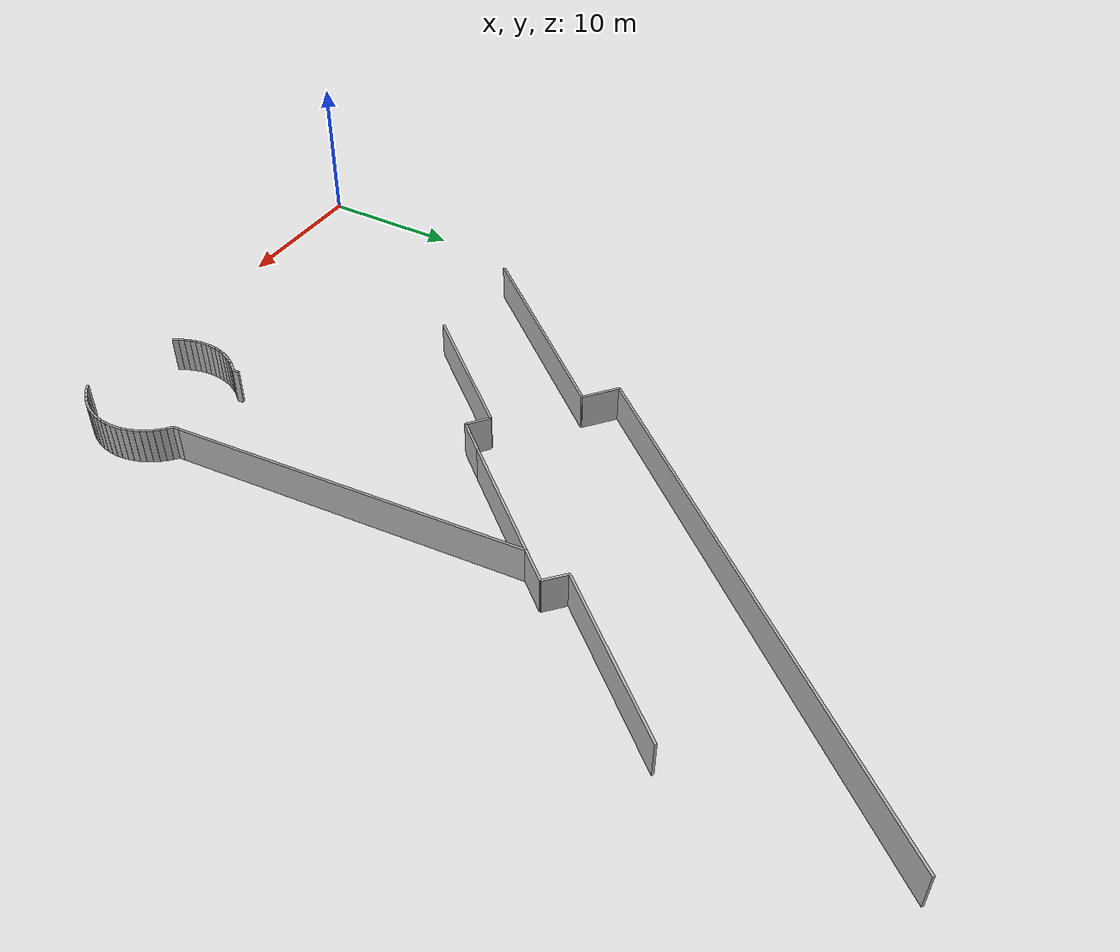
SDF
<?xml version="1.0" ?>
<sdf version="1.6">
  <model name="sps_0839">
    <pose frame="">0 0 0 0 -0 0</pose>
    <static>1</static>
    <self_collide>0</self_collide>
    <allow_auto_disable>0</allow_auto_disable>
    <link name="Wall34">
      <kinematic>0</kinematic>
      <gravity>1</gravity>
      <self_collide>0</self_collide>
      <collision name="collision">
        <geometry>
          <box>
            <size>15.2064 0.15 2.5</size>
          </box>
        </geometry>
        <pose frame="">0 0 0 0 -0 0</pose>
      </collision>
      <visual name="visual">
        <geometry>
          <box>
            <size>15.2064 0.15 2.5</size>
          </box>
        </geometry>
        <pose frame="">0 0 0 0 -0 0</pose>
        <cast_shadows>1</cast_shadows>
        <transparency>0.0</transparency>
      </visual>
      <pose frame="">8.95257 23.6938 1.25 0 0 -2.27376</pose>
    </link>
    <link name="Wall41">
      <kinematic>0</kinematic>
      <gravity>1</gravity>
      <self_collide>0</self_collide>
      <collision name="collision">
        <geometry>
          <box>
            <size>10.116 0.15 2.5</size>
          </box>
        </geometry>
        <pose frame="">0 0 0 0 -0 0</pose>
      </collision>
      <visual name="visual">
        <geometry>
          <box>
            <size>10.116 0.15 2.5</size>
          </box>
        </geometry>
        <pose frame="">0 0 0 0 -0 0</pose>
        <cast_shadows>1</cast_shadows>
        <transparency>0.0</transparency>
      </visual>
      <pose frame="">15.181 21.753 1.25 0 -0 0.868142</pose>
    </link>
    <link name="Wall42">
      <kinematic>0</kinematic>
      <gravity>1</gravity>
      <self_collide>0</self_collide>
      <collision name="collision">
        <geometry>
          <box>
            <size>1.60706 0.15 2.5</size>
          </box>
        </geometry>
        <pose frame="">0 0 0 0 -0 0</pose>
      </collision>
      <visual name="visual">
        <geometry>
          <box>
            <size>1.60706 0.15 2.5</size>
          </box>
        </geometry>
        <pose frame="">0 0 0 0 -0 0</pose>
        <cast_shadows>1</cast_shadows>
        <transparency>0.0</transparency>
      </visual>
      <pose frame="">19.0619 25.0924 1.25 0 0 -0.70461</pose>
    </link>
    <link name="Wall43">
      <kinematic>0</kinematic>
      <gravity>1</gravity>
      <self_collide>0</self_collide>
      <collision name="collision">
        <geometry>
          <box>
            <size>2.44092 0.15 2.5</size>
          </box>
        </geometry>
        <pose frame="">0 0 0 0 -0 0</pose>
      </collision>
      <visual name="visual">
        <geometry>
          <box>
            <size>2.44092 0.15 2.5</size>
          </box>
        </geometry>
        <pose frame="">0 0 0 0 -0 0</pose>
        <cast_shadows>1</cast_shadows>
        <transparency>0.0</transparency>
      </visual>
      <pose frame="">20.4654 25.501 1.25 0 -0 0.865243</pose>
    </link>
    <link name="Wall44">
      <kinematic>0</kinematic>
      <gravity>1</gravity>
      <self_collide>0</self_collide>
      <collision name="collision">
        <geometry>
          <box>
            <size>1.62048 0.15 2.5</size>
          </box>
        </geometry>
        <pose frame="">0 0 0 0 -0 0</pose>
      </collision>
      <visual name="visual">
        <geometry>
          <box>
            <size>1.62048 0.15 2.5</size>
          </box>
        </geometry>
        <pose frame="">0 0 0 0 -0 0</pose>
        <cast_shadows>1</cast_shadows>
        <transparency>0.0</transparency>
      </visual>
      <pose frame="">27.7577 35.3554 1.25 0 0 -0.759801</pose>
    </link>
    <link name="Wall206">
      <kinematic>0</kinematic>
      <gravity>1</gravity>
      <self_collide>0</self_collide>
      <collision name="collision">
        <geometry>
          <box>
            <size>2.50517 0.15 2.5</size>
          </box>
        </geometry>
        <pose frame="">0 0 0 0 -0 0</pose>
      </collision>
      <visual name="visual">
        <geometry>
          <box>
            <size>2.50517 0.15 2.5</size>
          </box>
        </geometry>
        <pose frame="">0 0 0 0 -0 0</pose>
        <cast_shadows>1</cast_shadows>
        <transparency>0.0</transparency>
      </visual>
      <pose frame="">12.9123 30.3043 1.25 0 -0 2.43862</pose>
    </link>
    <link name="Wall444">
      <kinematic>0</kinematic>
      <gravity>1</gravity>
      <self_collide>0</self_collide>
      <collision name="collision">
        <geometry>
          <box>
            <size>34.8178 0.15 2.5</size>
          </box>
        </geometry>
        <pose frame="">0 0 0 0 -0 0</pose>
      </collision>
      <visual name="visual">
        <geometry>
          <box>
            <size>34.8178 0.15 2.5</size>
          </box>
        </geometry>
        <pose frame="">0 0 0 0 -0 0</pose>
        <cast_shadows>1</cast_shadows>
        <transparency>0.0</transparency>
      </visual>
      <pose frame="">23.213 44.3943 1.25 0 -0 0.867691</pose>
    </link>
    <link name="Wall551">
      <kinematic>0</kinematic>
      <gravity>1</gravity>
      <self_collide>0</self_collide>
      <collision name="collision">
        <geometry>
          <box>
            <size>2.33975 0.15 2.5</size>
          </box>
        </geometry>
        <pose frame="">0 0 0 0 -0 0</pose>
      </collision>
      <visual name="visual">
        <geometry>
          <box>
            <size>2.33975 0.15 2.5</size>
          </box>
        </geometry>
        <pose frame="">0 0 0 0 -0 0</pose>
        <cast_shadows>1</cast_shadows>
        <transparency>0.0</transparency>
      </visual>
      <pose frame="">27.589 33.9046 1.25 0 0 -2.27354</pose>
    </link>
    <link name="Wall619">
      <kinematic>0</kinematic>
      <gravity>1</gravity>
      <self_collide>0</self_collide>
      <collision name="collision">
        <geometry>
          <box>
            <size>11.2896 0.15 2.5</size>
          </box>
        </geometry>
        <pose frame="">0 0 0 0 -0 0</pose>
      </collision>
      <visual name="visual">
        <geometry>
          <box>
            <size>11.2896 0.15 2.5</size>
          </box>
        </geometry>
        <pose frame="">0 0 0 0 -0 0</pose>
        <cast_shadows>1</cast_shadows>
        <transparency>0.0</transparency>
      </visual>
      <pose frame="">30.8198 40.2198 1.25 0 -0 0.867753</pose>
    </link>
    <link name="Wall863">
      <kinematic>0</kinematic>
      <gravity>1</gravity>
      <self_collide>0</self_collide>
      <collision name="collision">
        <geometry>
          <box>
            <size>8.62596 0.15 2.5</size>
          </box>
        </geometry>
        <pose frame="">0 0 0 0 -0 0</pose>
      </collision>
      <visual name="visual">
        <geometry>
          <box>
            <size>8.62596 0.15 2.5</size>
          </box>
        </geometry>
        <pose frame="">0 0 0 0 -0 0</pose>
        <cast_shadows>1</cast_shadows>
        <transparency>0.0</transparency>
      </visual>
      <pose frame="">24.0449 29.7201 1.25 0 -0 0.867941</pose>
    </link>
    <link name="Wall864">
      <kinematic>0</kinematic>
      <gravity>1</gravity>
      <self_collide>0</self_collide>
      <collision name="collision">
        <geometry>
          <box>
            <size>23.2917 0.15 2.5</size>
          </box>
        </geometry>
        <pose frame="">0 0 0 0 -0 0</pose>
      </collision>
      <visual name="visual">
        <geometry>
          <box>
            <size>23.2917 0.15 2.5</size>
          </box>
        </geometry>
        <pose frame="">0 0 0 0 -0 0</pose>
        <cast_shadows>1</cast_shadows>
        <transparency>0.0</transparency>
      </visual>
      <pose frame="">27.8028 21.4055 1.25 0 0 -1.48741</pose>
    </link>
    <link name="Wall865">
      <kinematic>0</kinematic>
      <gravity>1</gravity>
      <self_collide>0</self_collide>
      <collision name="collision">
        <geometry>
          <box>
            <size>0.421421 0.15 2.5</size>
          </box>
        </geometry>
        <pose frame="">0 0 0 0 -0 0</pose>
      </collision>
      <visual name="visual">
        <geometry>
          <box>
            <size>0.421421 0.15 2.5</size>
          </box>
        </geometry>
        <pose frame="">0 0 0 0 -0 0</pose>
        <cast_shadows>1</cast_shadows>
        <transparency>0.0</transparency>
      </visual>
      <pose frame="">28.7902 9.59007 1.25 0 0 -1.48815</pose>
    </link>
    <link name="Wall866">
      <kinematic>0</kinematic>
      <gravity>1</gravity>
      <self_collide>0</self_collide>
      <collision name="collision">
        <geometry>
          <box>
            <size>0.399021 0.15 2.5</size>
          </box>
        </geometry>
        <pose frame="">0 0 0 0 -0 0</pose>
      </collision>
      <visual name="visual">
        <geometry>
          <box>
            <size>0.399021 0.15 2.5</size>
          </box>
        </geometry>
        <pose frame="">0 0 0 0 -0 0</pose>
        <cast_shadows>1</cast_shadows>
        <transparency>0.0</transparency>
      </visual>
      <pose frame="">28.9608 9.25227 1.25 0 0 -0.695287</pose>
    </link>
    <link name="Wall867">
      <kinematic>0</kinematic>
      <gravity>1</gravity>
      <self_collide>0</self_collide>
      <collision name="collision">
        <geometry>
          <box>
            <size>0.398958 0.15 2.5</size>
          </box>
        </geometry>
        <pose frame="">0 0 0 0 -0 0</pose>
      </collision>
      <visual name="visual">
        <geometry>
          <box>
            <size>0.398958 0.15 2.5</size>
          </box>
        </geometry>
        <pose frame="">0 0 0 0 -0 0</pose>
        <cast_shadows>1</cast_shadows>
        <transparency>0.0</transparency>
      </visual>
      <pose frame="">29.2555 8.98387 1.25 0 0 -0.782153</pose>
    </link>
    <link name="Wall868">
      <kinematic>0</kinematic>
      <gravity>1</gravity>
      <self_collide>0</self_collide>
      <collision name="collision">
        <geometry>
          <box>
            <size>0.398966 0.15 2.5</size>
          </box>
        </geometry>
        <pose frame="">0 0 0 0 -0 0</pose>
      </collision>
      <visual name="visual">
        <geometry>
          <box>
            <size>0.398966 0.15 2.5</size>
          </box>
        </geometry>
        <pose frame="">0 0 0 0 -0 0</pose>
        <cast_shadows>1</cast_shadows>
        <transparency>0.0</transparency>
      </visual>
      <pose frame="">29.5257 8.69078 1.25 0 0 -0.870201</pose>
    </link>
    <link name="Wall869">
      <kinematic>0</kinematic>
      <gravity>1</gravity>
      <self_collide>0</self_collide>
      <collision name="collision">
        <geometry>
          <box>
            <size>0.398946 0.15 2.5</size>
          </box>
        </geometry>
        <pose frame="">0 0 0 0 -0 0</pose>
      </collision>
      <visual name="visual">
        <geometry>
          <box>
            <size>0.398946 0.15 2.5</size>
          </box>
        </geometry>
        <pose frame="">0 0 0 0 -0 0</pose>
        <cast_shadows>1</cast_shadows>
        <transparency>0.0</transparency>
      </visual>
      <pose frame="">29.7689 8.37508 1.25 0 0 -0.958266</pose>
    </link>
    <link name="Wall870">
      <kinematic>0</kinematic>
      <gravity>1</gravity>
      <self_collide>0</self_collide>
      <collision name="collision">
        <geometry>
          <box>
            <size>0.398919 0.15 2.5</size>
          </box>
        </geometry>
        <pose frame="">0 0 0 0 -0 0</pose>
      </collision>
      <visual name="visual">
        <geometry>
          <box>
            <size>0.398919 0.15 2.5</size>
          </box>
        </geometry>
        <pose frame="">0 0 0 0 -0 0</pose>
        <cast_shadows>1</cast_shadows>
        <transparency>0.0</transparency>
      </visual>
      <pose frame="">29.9836 8.03929 1.25 0 0 -1.0456</pose>
    </link>
    <link name="Wall871">
      <kinematic>0</kinematic>
      <gravity>1</gravity>
      <self_collide>0</self_collide>
      <collision name="collision">
        <geometry>
          <box>
            <size>0.399011 0.15 2.5</size>
          </box>
        </geometry>
        <pose frame="">0 0 0 0 -0 0</pose>
      </collision>
      <visual name="visual">
        <geometry>
          <box>
            <size>0.399011 0.15 2.5</size>
          </box>
        </geometry>
        <pose frame="">0 0 0 0 -0 0</pose>
        <cast_shadows>1</cast_shadows>
        <transparency>0.0</transparency>
      </visual>
      <pose frame="">30.1681 7.68599 1.25 0 0 -1.13342</pose>
    </link>
    <link name="Wall872">
      <kinematic>0</kinematic>
      <gravity>1</gravity>
      <self_collide>0</self_collide>
      <collision name="collision">
        <geometry>
          <box>
            <size>0.398874 0.15 2.5</size>
          </box>
        </geometry>
        <pose frame="">0 0 0 0 -0 0</pose>
      </collision>
      <visual name="visual">
        <geometry>
          <box>
            <size>0.398874 0.15 2.5</size>
          </box>
        </geometry>
        <pose frame="">0 0 0 0 -0 0</pose>
        <cast_shadows>1</cast_shadows>
        <transparency>0.0</transparency>
      </visual>
      <pose frame="">30.3209 7.31789 1.25 0 0 -1.22127</pose>
    </link>
    <link name="Wall873">
      <kinematic>0</kinematic>
      <gravity>1</gravity>
      <self_collide>0</self_collide>
      <collision name="collision">
        <geometry>
          <box>
            <size>0.399064 0.15 2.5</size>
          </box>
        </geometry>
        <pose frame="">0 0 0 0 -0 0</pose>
      </collision>
      <visual name="visual">
        <geometry>
          <box>
            <size>0.399064 0.15 2.5</size>
          </box>
        </geometry>
        <pose frame="">0 0 0 0 -0 0</pose>
        <cast_shadows>1</cast_shadows>
        <transparency>0.0</transparency>
      </visual>
      <pose frame="">30.4409 6.93779 1.25 0 0 -1.30872</pose>
    </link>
    <link name="Wall874">
      <kinematic>0</kinematic>
      <gravity>1</gravity>
      <self_collide>0</self_collide>
      <collision name="collision">
        <geometry>
          <box>
            <size>0.399022 0.15 2.5</size>
          </box>
        </geometry>
        <pose frame="">0 0 0 0 -0 0</pose>
      </collision>
      <visual name="visual">
        <geometry>
          <box>
            <size>0.399022 0.15 2.5</size>
          </box>
        </geometry>
        <pose frame="">0 0 0 0 -0 0</pose>
        <cast_shadows>1</cast_shadows>
        <transparency>0.0</transparency>
      </visual>
      <pose frame="">30.5272 6.54857 1.25 0 0 -1.39692</pose>
    </link>
    <link name="Wall875">
      <kinematic>0</kinematic>
      <gravity>1</gravity>
      <self_collide>0</self_collide>
      <collision name="collision">
        <geometry>
          <box>
            <size>0.398883 0.15 2.5</size>
          </box>
        </geometry>
        <pose frame="">0 0 0 0 -0 0</pose>
      </collision>
      <visual name="visual">
        <geometry>
          <box>
            <size>0.398883 0.15 2.5</size>
          </box>
        </geometry>
        <pose frame="">0 0 0 0 -0 0</pose>
        <cast_shadows>1</cast_shadows>
        <transparency>0.0</transparency>
      </visual>
      <pose frame="">30.5788 6.15337 1.25 0 0 -1.48454</pose>
    </link>
    <link name="Wall876">
      <kinematic>0</kinematic>
      <gravity>1</gravity>
      <self_collide>0</self_collide>
      <collision name="collision">
        <geometry>
          <box>
            <size>0.398987 0.15 2.5</size>
          </box>
        </geometry>
        <pose frame="">0 0 0 0 -0 0</pose>
      </collision>
      <visual name="visual">
        <geometry>
          <box>
            <size>0.398987 0.15 2.5</size>
          </box>
        </geometry>
        <pose frame="">0 0 0 0 -0 0</pose>
        <cast_shadows>1</cast_shadows>
        <transparency>0.0</transparency>
      </visual>
      <pose frame="">30.5958 5.75517 1.25 0 0 -1.57171</pose>
    </link>
    <link name="Wall877">
      <kinematic>0</kinematic>
      <gravity>1</gravity>
      <self_collide>0</self_collide>
      <collision name="collision">
        <geometry>
          <box>
            <size>0.398974 0.15 2.5</size>
          </box>
        </geometry>
        <pose frame="">0 0 0 0 -0 0</pose>
      </collision>
      <visual name="visual">
        <geometry>
          <box>
            <size>0.398974 0.15 2.5</size>
          </box>
        </geometry>
        <pose frame="">0 0 0 0 -0 0</pose>
        <cast_shadows>1</cast_shadows>
        <transparency>0.0</transparency>
      </visual>
      <pose frame="">30.578 5.35698 1.25 0 0 -1.65964</pose>
    </link>
    <link name="Wall878">
      <kinematic>0</kinematic>
      <gravity>1</gravity>
      <self_collide>0</self_collide>
      <collision name="collision">
        <geometry>
          <box>
            <size>0.398984 0.15 2.5</size>
          </box>
        </geometry>
        <pose frame="">0 0 0 0 -0 0</pose>
      </collision>
      <visual name="visual">
        <geometry>
          <box>
            <size>0.398984 0.15 2.5</size>
          </box>
        </geometry>
        <pose frame="">0 0 0 0 -0 0</pose>
        <cast_shadows>1</cast_shadows>
        <transparency>0.0</transparency>
      </visual>
      <pose frame="">30.5252 4.9619 1.25 0 0 -1.74764</pose>
    </link>
    <link name="Wall879">
      <kinematic>0</kinematic>
      <gravity>1</gravity>
      <self_collide>0</self_collide>
      <collision name="collision">
        <geometry>
          <box>
            <size>0.398874 0.15 2.5</size>
          </box>
        </geometry>
        <pose frame="">0 0 0 0 -0 0</pose>
      </collision>
      <visual name="visual">
        <geometry>
          <box>
            <size>0.398874 0.15 2.5</size>
          </box>
        </geometry>
        <pose frame="">0 0 0 0 -0 0</pose>
        <cast_shadows>1</cast_shadows>
        <transparency>0.0</transparency>
      </visual>
      <pose frame="">30.4379 4.57301 1.25 0 0 -1.83522</pose>
    </link>
    <link name="Wall880">
      <kinematic>0</kinematic>
      <gravity>1</gravity>
      <self_collide>0</self_collide>
      <collision name="collision">
        <geometry>
          <box>
            <size>0.399095 0.15 2.5</size>
          </box>
        </geometry>
        <pose frame="">0 0 0 0 -0 0</pose>
      </collision>
      <visual name="visual">
        <geometry>
          <box>
            <size>0.399095 0.15 2.5</size>
          </box>
        </geometry>
        <pose frame="">0 0 0 0 -0 0</pose>
        <cast_shadows>1</cast_shadows>
        <transparency>0.0</transparency>
      </visual>
      <pose frame="">30.317 4.19319 1.25 0 0 -1.92273</pose>
    </link>
    <link name="Wall881">
      <kinematic>0</kinematic>
      <gravity>1</gravity>
      <self_collide>0</self_collide>
      <collision name="collision">
        <geometry>
          <box>
            <size>0.39874 0.15 2.5</size>
          </box>
        </geometry>
        <pose frame="">0 0 0 0 -0 0</pose>
      </collision>
      <visual name="visual">
        <geometry>
          <box>
            <size>0.39874 0.15 2.5</size>
          </box>
        </geometry>
        <pose frame="">0 0 0 0 -0 0</pose>
        <cast_shadows>1</cast_shadows>
        <transparency>0.0</transparency>
      </visual>
      <pose frame="">30.1634 3.82548 1.25 0 0 -2.01069</pose>
    </link>
    <link name="Wall882">
      <kinematic>0</kinematic>
      <gravity>1</gravity>
      <self_collide>0</self_collide>
      <collision name="collision">
        <geometry>
          <box>
            <size>0.399001 0.15 2.5</size>
          </box>
        </geometry>
        <pose frame="">0 0 0 0 -0 0</pose>
      </collision>
      <visual name="visual">
        <geometry>
          <box>
            <size>0.399001 0.15 2.5</size>
          </box>
        </geometry>
        <pose frame="">0 0 0 0 -0 0</pose>
        <cast_shadows>1</cast_shadows>
        <transparency>0.0</transparency>
      </visual>
      <pose frame="">29.978 3.4727 1.25 0 0 -2.09818</pose>
    </link>
    <link name="Wall883">
      <kinematic>0</kinematic>
      <gravity>1</gravity>
      <self_collide>0</self_collide>
      <collision name="collision">
        <geometry>
          <box>
            <size>0.399045 0.15 2.5</size>
          </box>
        </geometry>
        <pose frame="">0 0 0 0 -0 0</pose>
      </collision>
      <visual name="visual">
        <geometry>
          <box>
            <size>0.399045 0.15 2.5</size>
          </box>
        </geometry>
        <pose frame="">0 0 0 0 -0 0</pose>
        <cast_shadows>1</cast_shadows>
        <transparency>0.0</transparency>
      </visual>
      <pose frame="">29.7624 3.1374 1.25 0 0 -2.18633</pose>
    </link>
    <link name="Wall884">
      <kinematic>0</kinematic>
      <gravity>1</gravity>
      <self_collide>0</self_collide>
      <collision name="collision">
        <geometry>
          <box>
            <size>0.399012 0.15 2.5</size>
          </box>
        </geometry>
        <pose frame="">0 0 0 0 -0 0</pose>
      </collision>
      <visual name="visual">
        <geometry>
          <box>
            <size>0.399012 0.15 2.5</size>
          </box>
        </geometry>
        <pose frame="">0 0 0 0 -0 0</pose>
        <cast_shadows>1</cast_shadows>
        <transparency>0.0</transparency>
      </visual>
      <pose frame="">29.5182 2.82231 1.25 0 0 -2.2739</pose>
    </link>
    <link name="Wall885">
      <kinematic>0</kinematic>
      <gravity>1</gravity>
      <self_collide>0</self_collide>
      <collision name="collision">
        <geometry>
          <box>
            <size>0.398831 0.15 2.5</size>
          </box>
        </geometry>
        <pose frame="">0 0 0 0 -0 0</pose>
      </collision>
      <visual name="visual">
        <geometry>
          <box>
            <size>0.398831 0.15 2.5</size>
          </box>
        </geometry>
        <pose frame="">0 0 0 0 -0 0</pose>
        <cast_shadows>1</cast_shadows>
        <transparency>0.0</transparency>
      </visual>
      <pose frame="">29.2476 2.5298 1.25 0 0 -2.36106</pose>
    </link>
    <link name="Wall886">
      <kinematic>0</kinematic>
      <gravity>1</gravity>
      <self_collide>0</self_collide>
      <collision name="collision">
        <geometry>
          <box>
            <size>0.399085 0.15 2.5</size>
          </box>
        </geometry>
        <pose frame="">0 0 0 0 -0 0</pose>
      </collision>
      <visual name="visual">
        <geometry>
          <box>
            <size>0.399085 0.15 2.5</size>
          </box>
        </geometry>
        <pose frame="">0 0 0 0 -0 0</pose>
        <cast_shadows>1</cast_shadows>
        <transparency>0.0</transparency>
      </visual>
      <pose frame="">28.9523 2.2621 1.25 0 0 -2.44922</pose>
    </link>
    <link name="Wall887">
      <kinematic>0</kinematic>
      <gravity>1</gravity>
      <self_collide>0</self_collide>
      <collision name="collision">
        <geometry>
          <box>
            <size>0.398933 0.15 2.5</size>
          </box>
        </geometry>
        <pose frame="">0 0 0 0 -0 0</pose>
      </collision>
      <visual name="visual">
        <geometry>
          <box>
            <size>0.398933 0.15 2.5</size>
          </box>
        </geometry>
        <pose frame="">0 0 0 0 -0 0</pose>
        <cast_shadows>1</cast_shadows>
        <transparency>0.0</transparency>
      </visual>
      <pose frame="">28.6346 2.02132 1.25 0 0 -2.53687</pose>
    </link>
    <link name="Wall891">
      <kinematic>0</kinematic>
      <gravity>1</gravity>
      <self_collide>0</self_collide>
      <collision name="collision">
        <geometry>
          <box>
            <size>0.405145 0.15 2.5</size>
          </box>
        </geometry>
        <pose frame="">0 0 0 0 -0 0</pose>
      </collision>
      <visual name="visual">
        <geometry>
          <box>
            <size>0.405145 0.15 2.5</size>
          </box>
        </geometry>
        <pose frame="">0 0 0 0 -0 0</pose>
        <cast_shadows>1</cast_shadows>
        <transparency>0.0</transparency>
      </visual>
      <pose frame="">22.1338 3.43739 1.25 0 -0 2.10768</pose>
    </link>
    <link name="Wall892">
      <kinematic>0</kinematic>
      <gravity>1</gravity>
      <self_collide>0</self_collide>
      <collision name="collision">
        <geometry>
          <box>
            <size>0.405584 0.15 2.5</size>
          </box>
        </geometry>
        <pose frame="">0 0 0 0 -0 0</pose>
      </collision>
      <visual name="visual">
        <geometry>
          <box>
            <size>0.405584 0.15 2.5</size>
          </box>
        </geometry>
        <pose frame="">0 0 0 0 -0 0</pose>
        <cast_shadows>1</cast_shadows>
        <transparency>0.0</transparency>
      </visual>
      <pose frame="">21.9424 3.79426 1.25 0 -0 2.01856</pose>
    </link>
    <link name="Wall893">
      <kinematic>0</kinematic>
      <gravity>1</gravity>
      <self_collide>0</self_collide>
      <collision name="collision">
        <geometry>
          <box>
            <size>0.405208 0.15 2.5</size>
          </box>
        </geometry>
        <pose frame="">0 0 0 0 -0 0</pose>
      </collision>
      <visual name="visual">
        <geometry>
          <box>
            <size>0.405208 0.15 2.5</size>
          </box>
        </geometry>
        <pose frame="">0 0 0 0 -0 0</pose>
        <cast_shadows>1</cast_shadows>
        <transparency>0.0</transparency>
      </visual>
      <pose frame="">21.7836 4.16679 1.25 0 -0 1.92923</pose>
    </link>
    <link name="Wall894">
      <kinematic>0</kinematic>
      <gravity>1</gravity>
      <self_collide>0</self_collide>
      <collision name="collision">
        <geometry>
          <box>
            <size>0.405358 0.15 2.5</size>
          </box>
        </geometry>
        <pose frame="">0 0 0 0 -0 0</pose>
      </collision>
      <visual name="visual">
        <geometry>
          <box>
            <size>0.405358 0.15 2.5</size>
          </box>
        </geometry>
        <pose frame="">0 0 0 0 -0 0</pose>
        <cast_shadows>1</cast_shadows>
        <transparency>0.0</transparency>
      </visual>
      <pose frame="">21.6586 4.55189 1.25 0 -0 1.8401</pose>
    </link>
    <link name="Wall895">
      <kinematic>0</kinematic>
      <gravity>1</gravity>
      <self_collide>0</self_collide>
      <collision name="collision">
        <geometry>
          <box>
            <size>0.405353 0.15 2.5</size>
          </box>
        </geometry>
        <pose frame="">0 0 0 0 -0 0</pose>
      </collision>
      <visual name="visual">
        <geometry>
          <box>
            <size>0.405353 0.15 2.5</size>
          </box>
        </geometry>
        <pose frame="">0 0 0 0 -0 0</pose>
        <cast_shadows>1</cast_shadows>
        <transparency>0.0</transparency>
      </visual>
      <pose frame="">21.5684 4.94667 1.25 0 -0 1.7508</pose>
    </link>
    <link name="Wall896">
      <kinematic>0</kinematic>
      <gravity>1</gravity>
      <self_collide>0</self_collide>
      <collision name="collision">
        <geometry>
          <box>
            <size>0.405317 0.15 2.5</size>
          </box>
        </geometry>
        <pose frame="">0 0 0 0 -0 0</pose>
      </collision>
      <visual name="visual">
        <geometry>
          <box>
            <size>0.405317 0.15 2.5</size>
          </box>
        </geometry>
        <pose frame="">0 0 0 0 -0 0</pose>
        <cast_shadows>1</cast_shadows>
        <transparency>0.0</transparency>
      </visual>
      <pose frame="">21.5136 5.34788 1.25 0 -0 1.66218</pose>
    </link>
    <link name="Wall897">
      <kinematic>0</kinematic>
      <gravity>1</gravity>
      <self_collide>0</self_collide>
      <collision name="collision">
        <geometry>
          <box>
            <size>0.405396 0.15 2.5</size>
          </box>
        </geometry>
        <pose frame="">0 0 0 0 -0 0</pose>
      </collision>
      <visual name="visual">
        <geometry>
          <box>
            <size>0.405396 0.15 2.5</size>
          </box>
        </geometry>
        <pose frame="">0 0 0 0 -0 0</pose>
        <cast_shadows>1</cast_shadows>
        <transparency>0.0</transparency>
      </visual>
      <pose frame="">21.4947 5.75239 1.25 0 -0 1.57275</pose>
    </link>
    <link name="Wall898">
      <kinematic>0</kinematic>
      <gravity>1</gravity>
      <self_collide>0</self_collide>
      <collision name="collision">
        <geometry>
          <box>
            <size>0.405336 0.15 2.5</size>
          </box>
        </geometry>
        <pose frame="">0 0 0 0 -0 0</pose>
      </collision>
      <visual name="visual">
        <geometry>
          <box>
            <size>0.405336 0.15 2.5</size>
          </box>
        </geometry>
        <pose frame="">0 0 0 0 -0 0</pose>
        <cast_shadows>1</cast_shadows>
        <transparency>0.0</transparency>
      </visual>
      <pose frame="">21.5119 6.157 1.25 0 -0 1.48395</pose>
    </link>
    <link name="Wall899">
      <kinematic>0</kinematic>
      <gravity>1</gravity>
      <self_collide>0</self_collide>
      <collision name="collision">
        <geometry>
          <box>
            <size>0.405263 0.15 2.5</size>
          </box>
        </geometry>
        <pose frame="">0 0 0 0 -0 0</pose>
      </collision>
      <visual name="visual">
        <geometry>
          <box>
            <size>0.405263 0.15 2.5</size>
          </box>
        </geometry>
        <pose frame="">0 0 0 0 -0 0</pose>
        <cast_shadows>1</cast_shadows>
        <transparency>0.0</transparency>
      </visual>
      <pose frame="">21.565 6.55839 1.25 0 -0 1.39458</pose>
    </link>
    <link name="Wall900">
      <kinematic>0</kinematic>
      <gravity>1</gravity>
      <self_collide>0</self_collide>
      <collision name="collision">
        <geometry>
          <box>
            <size>0.405441 0.15 2.5</size>
          </box>
        </geometry>
        <pose frame="">0 0 0 0 -0 0</pose>
      </collision>
      <visual name="visual">
        <geometry>
          <box>
            <size>0.405441 0.15 2.5</size>
          </box>
        </geometry>
        <pose frame="">0 0 0 0 -0 0</pose>
        <cast_shadows>1</cast_shadows>
        <transparency>0.0</transparency>
      </visual>
      <pose frame="">21.6537 6.95351 1.25 0 -0 1.3053</pose>
    </link>
    <link name="Wall901">
      <kinematic>0</kinematic>
      <gravity>1</gravity>
      <self_collide>0</self_collide>
      <collision name="collision">
        <geometry>
          <box>
            <size>0.405341 0.15 2.5</size>
          </box>
        </geometry>
        <pose frame="">0 0 0 0 -0 0</pose>
      </collision>
      <visual name="visual">
        <geometry>
          <box>
            <size>0.405341 0.15 2.5</size>
          </box>
        </geometry>
        <pose frame="">0 0 0 0 -0 0</pose>
        <cast_shadows>1</cast_shadows>
        <transparency>0.0</transparency>
      </visual>
      <pose frame="">21.7772 7.33922 1.25 0 -0 1.21666</pose>
    </link>
    <link name="Wall902">
      <kinematic>0</kinematic>
      <gravity>1</gravity>
      <self_collide>0</self_collide>
      <collision name="collision">
        <geometry>
          <box>
            <size>0.40523 0.15 2.5</size>
          </box>
        </geometry>
        <pose frame="">0 0 0 0 -0 0</pose>
      </collision>
      <visual name="visual">
        <geometry>
          <box>
            <size>0.40523 0.15 2.5</size>
          </box>
        </geometry>
        <pose frame="">0 0 0 0 -0 0</pose>
        <cast_shadows>1</cast_shadows>
        <transparency>0.0</transparency>
      </visual>
      <pose frame="">21.9344 7.71229 1.25 0 -0 1.12695</pose>
    </link>
    <link name="Wall903">
      <kinematic>0</kinematic>
      <gravity>1</gravity>
      <self_collide>0</self_collide>
      <collision name="collision">
        <geometry>
          <box>
            <size>0.405375 0.15 2.5</size>
          </box>
        </geometry>
        <pose frame="">0 0 0 0 -0 0</pose>
      </collision>
      <visual name="visual">
        <geometry>
          <box>
            <size>0.405375 0.15 2.5</size>
          </box>
        </geometry>
        <pose frame="">0 0 0 0 -0 0</pose>
        <cast_shadows>1</cast_shadows>
        <transparency>0.0</transparency>
      </visual>
      <pose frame="">22.1244 8.0699 1.25 0 -0 1.03828</pose>
    </link>
    <link name="Wall904">
      <kinematic>0</kinematic>
      <gravity>1</gravity>
      <self_collide>0</self_collide>
      <collision name="collision">
        <geometry>
          <box>
            <size>0.405491 0.15 2.5</size>
          </box>
        </geometry>
        <pose frame="">0 0 0 0 -0 0</pose>
      </collision>
      <visual name="visual">
        <geometry>
          <box>
            <size>0.405491 0.15 2.5</size>
          </box>
        </geometry>
        <pose frame="">0 0 0 0 -0 0</pose>
        <cast_shadows>1</cast_shadows>
        <transparency>0.0</transparency>
      </visual>
      <pose frame="">22.3454 8.40932 1.25 0 -0 0.948972</pose>
    </link>
    <link name="Wall905">
      <kinematic>0</kinematic>
      <gravity>1</gravity>
      <self_collide>0</self_collide>
      <collision name="collision">
        <geometry>
          <box>
            <size>0.40517 0.15 2.5</size>
          </box>
        </geometry>
        <pose frame="">0 0 0 0 -0 0</pose>
      </collision>
      <visual name="visual">
        <geometry>
          <box>
            <size>0.40517 0.15 2.5</size>
          </box>
        </geometry>
        <pose frame="">0 0 0 0 -0 0</pose>
        <cast_shadows>1</cast_shadows>
        <transparency>0.0</transparency>
      </visual>
      <pose frame="">22.5957 8.72761 1.25 0 -0 0.859817</pose>
    </link>
    <link name="Wall906">
      <kinematic>0</kinematic>
      <gravity>1</gravity>
      <self_collide>0</self_collide>
      <collision name="collision">
        <geometry>
          <box>
            <size>0.418198 0.15 2.5</size>
          </box>
        </geometry>
        <pose frame="">0 0 0 0 -0 0</pose>
      </collision>
      <visual name="visual">
        <geometry>
          <box>
            <size>0.418198 0.15 2.5</size>
          </box>
        </geometry>
        <pose frame="">0 0 0 0 -0 0</pose>
        <cast_shadows>1</cast_shadows>
        <transparency>0.0</transparency>
      </visual>
      <pose frame="">22.7105 9.08949 1.25 0 -0 1.65408</pose>
    </link>
  </model>
</sdf>
